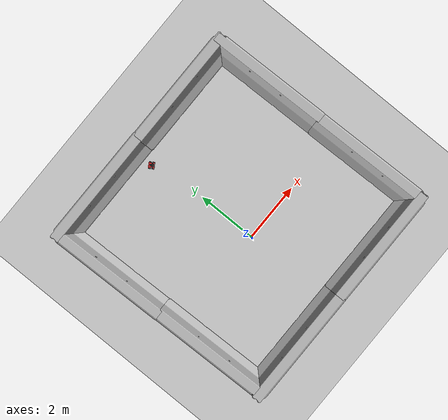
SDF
<sdf version="1.7">
 <world name="default">
  <light name="sun" type="directional">
   <pose>0 0 10 0 -0 0</pose>
   <diffuse>0.8 0.8 0.8 1</diffuse>
   <specular>0.2 0.2 0.2 1</specular>
   <attenuation>
    <range>1000</range>
    <constant>0.9</constant>
    <linear>0.01</linear>
    <quadratic>0.001</quadratic>
   </attenuation>
   <direction>-0.5 0.1 -0.9</direction>
   <spot><inner_angle>0</inner_angle><outer_angle>0</outer_angle><falloff>0</falloff></spot>
  </light>
  <model name="ground_plane">
   <static>1</static>
   <link name="link">
    <collision name="collision">
     <geometry><plane><normal>0 0 1</normal><size>100 100</size></plane></geometry>
     <surface>
      <contact><collide_bitmask>65535</collide_bitmask></contact>
      <friction><ode><mu>100</mu><mu2>50</mu2></ode></friction>
     </surface>
    </collision>
    <visual name="visual">
     <cast_shadows>0</cast_shadows>
     <geometry><plane><normal>0 0 1</normal><size>100 100</size></plane></geometry>
     <material>
      <script><uri>file://media/materials/scripts/gazebo.material</uri><name>Gazebo/Grey</name></script>
     </material>
    </visual>
   </link>
  </model>
  <gravity>0 0 -9.8</gravity>
  <magnetic_field>6e-06 2.3e-05 -4.2e-05</magnetic_field>
  <atmosphere type="adiabatic"/>
  <physics type="ode">
   <max_step_size>0.001</max_step_size>
   <real_time_factor>1</real_time_factor>
   <real_time_update_rate>1000</real_time_update_rate>
  </physics>
  <scene><ambient>0.4 0.4 0.4 1</ambient><background>0.7 0.7 0.7 1</background><shadows>1</shadows></scene>
  <spherical_coordinates>
   <surface_model>EARTH_WGS84</surface_model>
   <latitude_deg>0</latitude_deg>
   <longitude_deg>0</longitude_deg>
   <elevation>0</elevation>
   <heading_deg>0</heading_deg>
  </spherical_coordinates>
  <model name="rosbot">
   <link name="base_link">
    <inertial>
     <pose>-0 0 0.04003 0 -0 0</pose>
     <mass>5.01002</mass>
     <inertia>
      <ixx>0.0100024</ixx>
      <ixy>0.01</ixy>
      <ixz>3.8397e-08</ixz>
      <iyy>0.0100025</iyy>
      <iyz>0.01</iyz>
      <izz>0.01</izz>
     </inertia>
    </inertial>
    <collision name="base_link_fixed_joint_lump__body_link_collision">
     <pose>0 0 0.02 0 -0 0</pose>
     <geometry><box><size>0.2 0.15 0.04</size></box></geometry>
    </collision>
    <collision name="base_link_fixed_joint_lump__camera_link_collision_1">
     <pose>-0.01 0 0.18 0 -0 0</pose>
     <geometry><box><size>0.001 0.001 0.001</size></box></geometry>
    </collision>
    <collision name="base_link_fixed_joint_lump__laser_collision_2">
     <pose>0.02 0 0.058 1.5707 0 1.56682</pose>
     <geometry>
      <mesh>
       <scale>0.001 0.001 0.001</scale>
       <uri>/home/rhys/catkin_ws/src/husarion_ws/src/rosbot_ros/src/rosbot_description/meshes/rplidar.stl</uri>
      </mesh>
     </geometry>
    </collision>
    <visual name="base_link_fixed_joint_lump__body_link_visual">
     <pose>0 0 -0.02 1.5707 0 1.5707</pose>
     <geometry>
      <mesh>
       <scale>0.001 0.001 0.001</scale>
       <uri>/home/rhys/catkin_ws/src/husarion_ws/src/rosbot_ros/src/rosbot_description/meshes/box.stl</uri>
      </mesh>
     </geometry>
    </visual>
    <visual name="base_link_fixed_joint_lump__camera_link_visual_1">
     <pose>-0.04 0 0.15 1.5707 0 1.5707</pose>
     <geometry>
      <mesh>
       <scale>0.001 0.001 0.001</scale>
       <uri>/home/rhys/catkin_ws/src/husarion_ws/src/rosbot_ros/src/rosbot_description/meshes/astra.stl</uri>
      </mesh>
     </geometry>
     <material>
      <script><name>Gazebo/Black</name><uri>file://media/materials/scripts/gazebo.material</uri></script>
     </material>
    </visual>
    <visual name="base_link_fixed_joint_lump__laser_visual_2">
     <pose>0.02 0 0.058 1.5707 0 1.56682</pose>
     <geometry>
      <mesh>
       <scale>0.001 0.001 0.001</scale>
       <uri>/home/rhys/catkin_ws/src/husarion_ws/src/rosbot_ros/src/rosbot_description/meshes/rplidar.stl</uri>
      </mesh>
     </geometry>
     <material>
      <script><name>Gazebo/Black</name><uri>file://media/materials/scripts/gazebo.material</uri></script>
     </material>
    </visual>
    <visual name="base_link_fixed_joint_lump__top_visual_3">
     <pose>0 0 0.055 1.5707 0 1.5707</pose>
     <geometry>
      <mesh>
       <scale>0.001 0.001 0.001</scale>
       <uri>/home/rhys/catkin_ws/src/husarion_ws/src/rosbot_ros/src/rosbot_description/meshes/upper.stl</uri>
      </mesh>
     </geometry>
     <material>
      <script><name>Gazebo/Red</name><uri>file://media/materials/scripts/gazebo.material</uri></script>
     </material>
    </visual>
    <sensor name="openni_camera_camera" type="depth">
     <always_on>1</always_on>
     <visualize>1</visualize>
     <camera>
      <horizontal_fov>1.047</horizontal_fov>
      <image><width>640</width><height>480</height><format>R8G8B8</format></image>
      <depth_camera><output>depths</output></depth_camera>
      <clip><near>0.1</near><far>100</far></clip>
     </camera>
     <plugin name="kinect_controller" filename="libgazebo_ros_openni_kinect.so">
      <alwaysOn>1</alwaysOn>
      <updateRate>10.0</updateRate>
      <cameraName>camera</cameraName>
      <frameName>camera_depth_frame</frameName>
      <imageTopicName>rgb/image_raw</imageTopicName>
      <depthImageTopicName>depth/image_raw</depthImageTopicName>
      <pointCloudTopicName>depth/points</pointCloudTopicName>
      <cameraInfoTopicName>rgb/camera_info</cameraInfoTopicName>
      <depthImageCameraInfoTopicName>depth/camera_info</depthImageCameraInfoTopicName>
      <pointCloudCutoff>0.4</pointCloudCutoff>
      <hackBaseline>0.07</hackBaseline>
      <distortionK1>0.0</distortionK1>
      <distortionK2>0.0</distortionK2>
      <distortionK3>0.0</distortionK3>
      <distortionT1>0.0</distortionT1>
      <distortionT2>0.0</distortionT2>
      <CxPrime>0.0</CxPrime>
      <Cx>0.0</Cx>
      <Cy>0.0</Cy>
      <focalLength>0.0</focalLength>
      <robotNamespace>/</robotNamespace>
     </plugin>
     <pose>-0.03 0 0.18 0 -0 0</pose>
    </sensor>
    <sensor name="range_fl" type="ray">
     <update_rate>5</update_rate>
     <ray>
      <scan>
       <horizontal>
        <samples>5</samples>
        <resolution>1</resolution>
        <min_angle>-0.05</min_angle>
        <max_angle>0.05</max_angle>
       </horizontal>
       <vertical>
        <samples>5</samples>
        <resolution>1</resolution>
        <min_angle>-0.05</min_angle>
        <max_angle>0.05</max_angle>
       </vertical>
      </scan>
      <range><min>0.01</min><max>0.9</max><resolution>0.01</resolution></range>
     </ray>
     <plugin name="gazebo_ros_range" filename="libgazebo_ros_range.so">
      <gaussianNoise>0.005</gaussianNoise>
      <alwaysOn>1</alwaysOn>
      <updateRate>5</updateRate>
      <topicName>range/fl</topicName>
      <frameName>range_fl</frameName>
      <fov>0.1</fov>
      <radiation>ultrasound</radiation>
      <robotNamespace>/</robotNamespace>
     </plugin>
     <pose>0.1 0.05 0.01 0 -0 0.13</pose>
    </sensor>
    <sensor name="range_fr" type="ray">
     <update_rate>5</update_rate>
     <ray>
      <scan>
       <horizontal>
        <samples>5</samples>
        <resolution>1</resolution>
        <min_angle>-0.05</min_angle>
        <max_angle>0.05</max_angle>
       </horizontal>
       <vertical>
        <samples>5</samples>
        <resolution>1</resolution>
        <min_angle>-0.05</min_angle>
        <max_angle>0.05</max_angle>
       </vertical>
      </scan>
      <range><min>0.01</min><max>0.9</max><resolution>0.01</resolution></range>
     </ray>
     <plugin name="gazebo_ros_range" filename="libgazebo_ros_range.so">
      <gaussianNoise>0.005</gaussianNoise>
      <alwaysOn>1</alwaysOn>
      <updateRate>5</updateRate>
      <topicName>range/fr</topicName>
      <frameName>range_fr</frameName>
      <fov>0.1</fov>
      <radiation>ultrasound</radiation>
      <robotNamespace>/</robotNamespace>
     </plugin>
     <pose>0.1 -0.05 0.01 0 0 -0.13</pose>
    </sensor>
    <sensor name="range_rl" type="ray">
     <update_rate>5</update_rate>
     <ray>
      <scan>
       <horizontal>
        <samples>5</samples>
        <resolution>1</resolution>
        <min_angle>-0.05</min_angle>
        <max_angle>0.05</max_angle>
       </horizontal>
       <vertical>
        <samples>5</samples>
        <resolution>1</resolution>
        <min_angle>-0.05</min_angle>
        <max_angle>0.05</max_angle>
       </vertical>
      </scan>
      <range><min>0.01</min><max>0.9</max><resolution>0.01</resolution></range>
     </ray>
     <plugin name="gazebo_ros_range" filename="libgazebo_ros_range.so">
      <gaussianNoise>0.005</gaussianNoise>
      <alwaysOn>1</alwaysOn>
      <updateRate>5</updateRate>
      <topicName>range/rl</topicName>
      <frameName>range_rl</frameName>
      <fov>0.1</fov>
      <radiation>ultrasound</radiation>
      <robotNamespace>/</robotNamespace>
     </plugin>
     <pose>-0.1 0.05 0.01 0 -0 3.01</pose>
    </sensor>
    <sensor name="range_rr" type="ray">
     <update_rate>5</update_rate>
     <ray>
      <scan>
       <horizontal>
        <samples>5</samples>
        <resolution>1</resolution>
        <min_angle>-0.05</min_angle>
        <max_angle>0.05</max_angle>
       </horizontal>
       <vertical>
        <samples>5</samples>
        <resolution>1</resolution>
        <min_angle>-0.05</min_angle>
        <max_angle>0.05</max_angle>
       </vertical>
      </scan>
      <range><min>0.01</min><max>0.9</max><resolution>0.01</resolution></range>
     </ray>
     <plugin name="gazebo_ros_range" filename="libgazebo_ros_range.so">
      <gaussianNoise>0.005</gaussianNoise>
      <alwaysOn>1</alwaysOn>
      <updateRate>5</updateRate>
      <topicName>range/rr</topicName>
      <frameName>range_rr</frameName>
      <fov>0.1</fov>
      <radiation>ultrasound</radiation>
      <robotNamespace>/</robotNamespace>
     </plugin>
     <pose>-0.1 -0.05 0.01 0 -0 -3.01319</pose>
    </sensor>
    <sensor name="head_rplidar_sensor" type="ray">
     <visualize>0</visualize>
     <update_rate>40</update_rate>
     <ray>
      <scan>
       <horizontal>
        <samples>720</samples>
        <resolution>1</resolution>
        <min_angle>-3.14159</min_angle>
        <max_angle>3.14159</max_angle>
       </horizontal>
       <vertical><samples>1</samples><min_angle>0</min_angle><max_angle>0</max_angle></vertical>
      </scan>
      <range><min>0.2</min><max>12</max><resolution>0.01</resolution></range>
      <noise><type>gaussian</type><mean>0</mean><stddev>0.01</stddev></noise>
     </ray>
     <plugin name="gazebo_ros_head_rplidar_controller" filename="libgazebo_ros_laser.so">
      <topicName>scan</topicName>
      <frameName>laser</frameName>
      <robotNamespace>/</robotNamespace>
     </plugin>
     <pose>0.02 0 0.058 0 -0 3.14</pose>
    </sensor>
    <sensor name="imu_sensor" type="imu">
     <always_on>1</always_on>
     <update_rate>10</update_rate>
     <visualize>1</visualize>
     <topic>imu</topic>
     <plugin name="imu_plugin" filename="libgazebo_ros_imu_sensor.so">
      <topicName>imu</topicName>
      <bodyName>imu_link</bodyName>
      <updateRateHZ>10.0</updateRateHZ>
      <gaussianNoise>0.0</gaussianNoise>
      <xyzOffset>0 0 0</xyzOffset>
      <rpyOffset>0 0 0</rpyOffset>
      <frameName>imu_link</frameName>
      <robotNamespace>/</robotNamespace>
     </plugin>
    </sensor>
   </link>
   <joint name="front_left_wheel_hinge" type="revolute">
    <pose relative_to="base_link">0.05 0.11 0 0 -0 0</pose>
    <parent>base_link</parent>
    <child>front_left_wheel</child>
    <axis>
     <xyz>0 1 0</xyz>
     <limit><effort>1</effort><velocity>10</velocity><lower>-1e+16</lower><upper>1e+16</upper></limit>
     <dynamics><spring_reference>0</spring_reference><spring_stiffness>0</spring_stiffness></dynamics>
    </axis>
   </joint>
   <link name="front_left_wheel">
    <pose relative_to="front_left_wheel_hinge">0 0 0 0 -0 0</pose>
    <inertial>
     <pose>0 0 0 -0 1.5707 1.5707</pose>
     <mass>0.5</mass>
     <inertia><ixx>0.001</ixx><ixy>0</ixy><ixz>0</ixz><iyy>0.001</iyy><iyz>0</iyz><izz>0.001</izz></inertia>
    </inertial>
    <collision name="front_left_wheel_collision">
     <pose>0 -0.014 0 1.5708 -0 0</pose>
     <geometry><cylinder><length>0.036</length><radius>0.04</radius></cylinder></geometry>
    </collision>
    <visual name="front_left_wheel_visual">
     <pose>0 0 0 0 -0 1.5707</pose>
     <geometry>
      <mesh>
       <scale>0.001 0.001 0.001</scale>
       <uri>/home/rhys/catkin_ws/src/husarion_ws/src/rosbot_ros/src/rosbot_description/meshes/wheel.stl</uri>
      </mesh>
     </geometry>
     <material>
      <script><name>Gazebo/Black</name><uri>file://media/materials/scripts/gazebo.material</uri></script>
     </material>
    </visual>
   </link>
   <joint name="front_right_wheel_hinge" type="revolute">
    <pose relative_to="base_link">0.05 -0.11 0 0 -0 0</pose>
    <parent>base_link</parent>
    <child>front_right_wheel</child>
    <axis>
     <xyz>0 1 0</xyz>
     <limit><effort>1</effort><velocity>10</velocity><lower>-1e+16</lower><upper>1e+16</upper></limit>
     <dynamics><spring_reference>0</spring_reference><spring_stiffness>0</spring_stiffness></dynamics>
    </axis>
   </joint>
   <link name="front_right_wheel">
    <pose relative_to="front_right_wheel_hinge">0 0 0 0 -0 0</pose>
    <inertial>
     <pose>0 0 0 -0 1.5707 1.5707</pose>
     <mass>0.5</mass>
     <inertia><ixx>0.001</ixx><ixy>0</ixy><ixz>0</ixz><iyy>0.001</iyy><iyz>0</iyz><izz>0.001</izz></inertia>
    </inertial>
    <collision name="front_right_wheel_collision">
     <pose>0 0.014 0 1.5708 -0 0</pose>
     <geometry><cylinder><length>0.036</length><radius>0.04</radius></cylinder></geometry>
    </collision>
    <visual name="front_right_wheel_visual">
     <pose>0 0 0 0 0 -1.5707</pose>
     <geometry>
      <mesh>
       <scale>0.001 0.001 0.001</scale>
       <uri>/home/rhys/catkin_ws/src/husarion_ws/src/rosbot_ros/src/rosbot_description/meshes/wheel.stl</uri>
      </mesh>
     </geometry>
     <material>
      <script><name>Gazebo/Black</name><uri>file://media/materials/scripts/gazebo.material</uri></script>
     </material>
    </visual>
   </link>
   <joint name="rear_left_wheel_hinge" type="revolute">
    <pose relative_to="base_link">-0.055 0.11 0 0 -0 0</pose>
    <parent>base_link</parent>
    <child>rear_left_wheel</child>
    <axis>
     <xyz>0 1 0</xyz>
     <limit><effort>1</effort><velocity>10</velocity><lower>-1e+16</lower><upper>1e+16</upper></limit>
     <dynamics><spring_reference>0</spring_reference><spring_stiffness>0</spring_stiffness></dynamics>
    </axis>
   </joint>
   <link name="rear_left_wheel">
    <pose relative_to="rear_left_wheel_hinge">0 0 0 0 -0 0</pose>
    <inertial>
     <pose>0 0 0 -0 1.5707 1.5707</pose>
     <mass>0.5</mass>
     <inertia><ixx>0.001</ixx><ixy>0</ixy><ixz>0</ixz><iyy>0.001</iyy><iyz>0</iyz><izz>0.001</izz></inertia>
    </inertial>
    <collision name="rear_left_wheel_collision">
     <pose>0 -0.014 0 1.5708 -0 0</pose>
     <geometry><cylinder><length>0.036</length><radius>0.04</radius></cylinder></geometry>
    </collision>
    <visual name="rear_left_wheel_visual">
     <pose>0 0 0 0 -0 1.5707</pose>
     <geometry>
      <mesh>
       <scale>0.001 0.001 0.001</scale>
       <uri>/home/rhys/catkin_ws/src/husarion_ws/src/rosbot_ros/src/rosbot_description/meshes/wheel.stl</uri>
      </mesh>
     </geometry>
     <material>
      <script><name>Gazebo/Black</name><uri>file://media/materials/scripts/gazebo.material</uri></script>
     </material>
    </visual>
   </link>
   <joint name="rear_right_wheel_hinge" type="revolute">
    <pose relative_to="base_link">-0.055 -0.11 0 0 -0 0</pose>
    <parent>base_link</parent>
    <child>rear_right_wheel</child>
    <axis>
     <xyz>0 1 0</xyz>
     <limit><effort>1</effort><velocity>10</velocity><lower>-1e+16</lower><upper>1e+16</upper></limit>
     <dynamics><spring_reference>0</spring_reference><spring_stiffness>0</spring_stiffness></dynamics>
    </axis>
   </joint>
   <link name="rear_right_wheel">
    <pose relative_to="rear_right_wheel_hinge">0 0 0 0 -0 0</pose>
    <inertial>
     <pose>0 0 0 -0 1.5707 1.5707</pose>
     <mass>0.5</mass>
     <inertia><ixx>0.001</ixx><ixy>0</ixy><ixz>0</ixz><iyy>0.001</iyy><iyz>0</iyz><izz>0.001</izz></inertia>
    </inertial>
    <collision name="rear_right_wheel_collision">
     <pose>0 0.014 0 1.5708 -0 0</pose>
     <geometry><cylinder><length>0.036</length><radius>0.04</radius></cylinder></geometry>
    </collision>
    <visual name="rear_right_wheel_visual">
     <pose>0 0 0 0 0 -1.5707</pose>
     <geometry>
      <mesh>
       <scale>0.001 0.001 0.001</scale>
       <uri>/home/rhys/catkin_ws/src/husarion_ws/src/rosbot_ros/src/rosbot_description/meshes/wheel.stl</uri>
      </mesh>
     </geometry>
     <material>
      <script><name>Gazebo/Black</name><uri>file://media/materials/scripts/gazebo.material</uri></script>
     </material>
    </visual>
   </link>
   <plugin name="skid_steer_drive_controller" filename="libgazebo_ros_skid_steer_drive.so">
    <updateRate>10.0</updateRate>
    <robotBaseFrame>/base_link</robotBaseFrame>
    <wheelSeparation>0.20</wheelSeparation>
    <wheelDiameter>0.08</wheelDiameter>
    <torque>5</torque>
    <leftFrontJoint>front_left_wheel_hinge</leftFrontJoint>
    <rightFrontJoint>front_right_wheel_hinge</rightFrontJoint>
    <leftRearJoint>rear_left_wheel_hinge</leftRearJoint>
    <rightRearJoint>rear_right_wheel_hinge</rightRearJoint>
    <topicName>cmd_vel</topicName>
    <commandTopic>cmd_vel</commandTopic>
    <broadcastTF>1</broadcastTF>
    <odometryTopic>odom</odometryTopic>
    <odometryFrame>/odom</odometryFrame>
    <covariance_x>0.000100</covariance_x>
    <covariance_y>0.000100</covariance_y>
    <covariance_yaw>0.010000</covariance_yaw>
    <robotNamespace>/</robotNamespace>
   </plugin>
   <static>0</static>
   <plugin name="gazebo_ros_control" filename="libgazebo_ros_control.so">
    <legacyModeNS>1</legacyModeNS>
    <robotNamespace>/</robotNamespace>
   </plugin>
   <pose>-0.241301 3.88169 0.041277 -9e-06 -0.023229 2.11561</pose>
  </model>
  <model name="jersey_barrier">
   <static>1</static>
   <link name="link">
    <visual name="visual">
     <geometry><mesh><uri>model://jersey_barrier/meshes/jersey_barrier.dae</uri></mesh></geometry>
    </visual>
    <collision name="upright">
     <pose>0 0 0.5715 0 -0 0</pose>
     <geometry><box><size>4.06542 0.3063 1.143</size></box></geometry>
    </collision>
    <collision name="base">
     <pose>0 0 0.032258 0 -0 0</pose>
     <geometry><box><size>4.06542 0.8107 0.064516</size></box></geometry>
    </collision>
    <collision name="base2">
     <pose>0 0 0.1 0 -0 0</pose>
     <geometry><box><size>4.06542 0.65 0.1</size></box></geometry>
    </collision>
    <collision name="base3">
     <pose>0 0 0.2 0 -0 0</pose>
     <geometry><box><size>4.06542 0.5 0.1</size></box></geometry>
    </collision>
    <collision name="left-angle">
     <pose>0 -0.224 0.2401 0.9 -0 0</pose>
     <geometry><box><size>4.06542 0.5 0.064516</size></box></geometry>
    </collision>
    <collision name="right-angle">
     <pose>0 0.224 0.2401 -0.9 0 0</pose>
     <geometry><box><size>4.06542 0.5 0.064516</size></box></geometry>
    </collision>
   </link>
   <pose>2.29557 -3.15917 0 0 -0 0</pose>
  </model>
  <model name="jersey_barrier_0">
   <static>1</static>
   <link name="link">
    <visual name="visual">
     <geometry><mesh><uri>model://jersey_barrier/meshes/jersey_barrier.dae</uri></mesh></geometry>
    </visual>
    <collision name="upright">
     <pose>0 0 0.5715 0 -0 0</pose>
     <geometry><box><size>4.06542 0.3063 1.143</size></box></geometry>
    </collision>
    <collision name="base">
     <pose>0 0 0.032258 0 -0 0</pose>
     <geometry><box><size>4.06542 0.8107 0.064516</size></box></geometry>
    </collision>
    <collision name="base2">
     <pose>0 0 0.1 0 -0 0</pose>
     <geometry><box><size>4.06542 0.65 0.1</size></box></geometry>
    </collision>
    <collision name="base3">
     <pose>0 0 0.2 0 -0 0</pose>
     <geometry><box><size>4.06542 0.5 0.1</size></box></geometry>
    </collision>
    <collision name="left-angle">
     <pose>0 -0.224 0.2401 0.9 -0 0</pose>
     <geometry><box><size>4.06542 0.5 0.064516</size></box></geometry>
    </collision>
    <collision name="right-angle">
     <pose>0 0.224 0.2401 -0.9 0 0</pose>
     <geometry><box><size>4.06542 0.5 0.064516</size></box></geometry>
    </collision>
   </link>
   <pose>-1.64664 -3.16062 0 0 -0 0</pose>
  </model>
  <model name="jersey_barrier_clone_clone">
   <static>1</static>
   <link name="link">
    <visual name="visual">
     <geometry><mesh><uri>model://jersey_barrier/meshes/jersey_barrier.dae</uri></mesh></geometry>
    </visual>
    <collision name="upright">
     <pose>0 0 0.5715 0 -0 0</pose>
     <geometry><box><size>4.06542 0.3063 1.143</size></box></geometry>
    </collision>
    <collision name="base">
     <pose>0 0 0.032258 0 -0 0</pose>
     <geometry><box><size>4.06542 0.8107 0.064516</size></box></geometry>
    </collision>
    <collision name="base2">
     <pose>0 0 0.1 0 -0 0</pose>
     <geometry><box><size>4.06542 0.65 0.1</size></box></geometry>
    </collision>
    <collision name="base3">
     <pose>0 0 0.2 0 -0 0</pose>
     <geometry><box><size>4.06542 0.5 0.1</size></box></geometry>
    </collision>
    <collision name="left-angle">
     <pose>0 -0.224 0.2401 0.9 -0 0</pose>
     <geometry><box><size>4.06542 0.5 0.064516</size></box></geometry>
    </collision>
    <collision name="right-angle">
     <pose>0 0.224 0.2401 -0.9 0 0</pose>
     <geometry><box><size>4.06542 0.5 0.064516</size></box></geometry>
    </collision>
   </link>
   <pose>4.05028 2.67129 0 0 -0 1.59245</pose>
  </model>
  <model name="jersey_barrier_clone_0">
   <static>1</static>
   <link name="link">
    <visual name="visual">
     <geometry><mesh><uri>model://jersey_barrier/meshes/jersey_barrier.dae</uri></mesh></geometry>
    </visual>
    <collision name="upright">
     <pose>0 0 0.5715 0 -0 0</pose>
     <geometry><box><size>4.06542 0.3063 1.143</size></box></geometry>
    </collision>
    <collision name="base">
     <pose>0 0 0.032258 0 -0 0</pose>
     <geometry><box><size>4.06542 0.8107 0.064516</size></box></geometry>
    </collision>
    <collision name="base2">
     <pose>0 0 0.1 0 -0 0</pose>
     <geometry><box><size>4.06542 0.65 0.1</size></box></geometry>
    </collision>
    <collision name="base3">
     <pose>0 0 0.2 0 -0 0</pose>
     <geometry><box><size>4.06542 0.5 0.1</size></box></geometry>
    </collision>
    <collision name="left-angle">
     <pose>0 -0.224 0.2401 0.9 -0 0</pose>
     <geometry><box><size>4.06542 0.5 0.064516</size></box></geometry>
    </collision>
    <collision name="right-angle">
     <pose>0 0.224 0.2401 -0.9 0 0</pose>
     <geometry><box><size>4.06542 0.5 0.064516</size></box></geometry>
    </collision>
   </link>
   <pose>2.14648 4.56149 0 0 -0 0</pose>
  </model>
  <model name="jersey_barrier_0_clone">
   <static>1</static>
   <link name="link">
    <visual name="visual">
     <geometry><mesh><uri>model://jersey_barrier/meshes/jersey_barrier.dae</uri></mesh></geometry>
    </visual>
    <collision name="upright">
     <pose>0 0 0.5715 0 -0 0</pose>
     <geometry><box><size>4.06542 0.3063 1.143</size></box></geometry>
    </collision>
    <collision name="base">
     <pose>0 0 0.032258 0 -0 0</pose>
     <geometry><box><size>4.06542 0.8107 0.064516</size></box></geometry>
    </collision>
    <collision name="base2">
     <pose>0 0 0.1 0 -0 0</pose>
     <geometry><box><size>4.06542 0.65 0.1</size></box></geometry>
    </collision>
    <collision name="base3">
     <pose>0 0 0.2 0 -0 0</pose>
     <geometry><box><size>4.06542 0.5 0.1</size></box></geometry>
    </collision>
    <collision name="left-angle">
     <pose>0 -0.224 0.2401 0.9 -0 0</pose>
     <geometry><box><size>4.06542 0.5 0.064516</size></box></geometry>
    </collision>
    <collision name="right-angle">
     <pose>0 0.224 0.2401 -0.9 0 0</pose>
     <geometry><box><size>4.06542 0.5 0.064516</size></box></geometry>
    </collision>
   </link>
   <pose>-1.77846 4.57785 0 0 -0 0</pose>
  </model>
  <model name="jersey_barrier_clone_clone_clone">
   <static>1</static>
   <link name="link">
    <visual name="visual">
     <geometry><mesh><uri>model://jersey_barrier/meshes/jersey_barrier.dae</uri></mesh></geometry>
    </visual>
    <collision name="upright">
     <pose>0 0 0.5715 0 -0 0</pose>
     <geometry><box><size>4.06542 0.3063 1.143</size></box></geometry>
    </collision>
    <collision name="base">
     <pose>0 0 0.032258 0 -0 0</pose>
     <geometry><box><size>4.06542 0.8107 0.064516</size></box></geometry>
    </collision>
    <collision name="base2">
     <pose>0 0 0.1 0 -0 0</pose>
     <geometry><box><size>4.06542 0.65 0.1</size></box></geometry>
    </collision>
    <collision name="base3">
     <pose>0 0 0.2 0 -0 0</pose>
     <geometry><box><size>4.06542 0.5 0.1</size></box></geometry>
    </collision>
    <collision name="left-angle">
     <pose>0 -0.224 0.2401 0.9 -0 0</pose>
     <geometry><box><size>4.06542 0.5 0.064516</size></box></geometry>
    </collision>
    <collision name="right-angle">
     <pose>0 0.224 0.2401 -0.9 0 0</pose>
     <geometry><box><size>4.06542 0.5 0.064516</size></box></geometry>
    </collision>
   </link>
   <pose>-3.58754 2.69747 0 0 -0 1.59245</pose>
  </model>
  <model name="jersey_barrier_clone_clone_clone_0">
   <static>1</static>
   <link name="link">
    <visual name="visual">
     <geometry><mesh><uri>model://jersey_barrier/meshes/jersey_barrier.dae</uri></mesh></geometry>
    </visual>
    <collision name="upright">
     <pose>0 0 0.5715 0 -0 0</pose>
     <geometry><box><size>4.06542 0.3063 1.143</size></box></geometry>
    </collision>
    <collision name="base">
     <pose>0 0 0.032258 0 -0 0</pose>
     <geometry><box><size>4.06542 0.8107 0.064516</size></box></geometry>
    </collision>
    <collision name="base2">
     <pose>0 0 0.1 0 -0 0</pose>
     <geometry><box><size>4.06542 0.65 0.1</size></box></geometry>
    </collision>
    <collision name="base3">
     <pose>0 0 0.2 0 -0 0</pose>
     <geometry><box><size>4.06542 0.5 0.1</size></box></geometry>
    </collision>
    <collision name="left-angle">
     <pose>0 -0.224 0.2401 0.9 -0 0</pose>
     <geometry><box><size>4.06542 0.5 0.064516</size></box></geometry>
    </collision>
    <collision name="right-angle">
     <pose>0 0.224 0.2401 -0.9 0 0</pose>
     <geometry><box><size>4.06542 0.5 0.064516</size></box></geometry>
    </collision>
   </link>
   <pose>-3.48781 -1.237 0 0 -0 1.59245</pose>
  </model>
  <model name="jersey_barrier_clone_clone_clone_1">
   <static>1</static>
   <link name="link">
    <visual name="visual">
     <geometry><mesh><uri>model://jersey_barrier/meshes/jersey_barrier.dae</uri></mesh></geometry>
    </visual>
    <collision name="upright">
     <pose>0 0 0.5715 0 -0 0</pose>
     <geometry><box><size>4.06542 0.3063 1.143</size></box></geometry>
    </collision>
    <collision name="base">
     <pose>0 0 0.032258 0 -0 0</pose>
     <geometry><box><size>4.06542 0.8107 0.064516</size></box></geometry>
    </collision>
    <collision name="base2">
     <pose>0 0 0.1 0 -0 0</pose>
     <geometry><box><size>4.06542 0.65 0.1</size></box></geometry>
    </collision>
    <collision name="base3">
     <pose>0 0 0.2 0 -0 0</pose>
     <geometry><box><size>4.06542 0.5 0.1</size></box></geometry>
    </collision>
    <collision name="left-angle">
     <pose>0 -0.224 0.2401 0.9 -0 0</pose>
     <geometry><box><size>4.06542 0.5 0.064516</size></box></geometry>
    </collision>
    <collision name="right-angle">
     <pose>0 0.224 0.2401 -0.9 0 0</pose>
     <geometry><box><size>4.06542 0.5 0.064516</size></box></geometry>
    </collision>
   </link>
   <pose>4.12504 -1.26922 0 0 -0 1.59245</pose>
  </model>
 </world>
</sdf>
